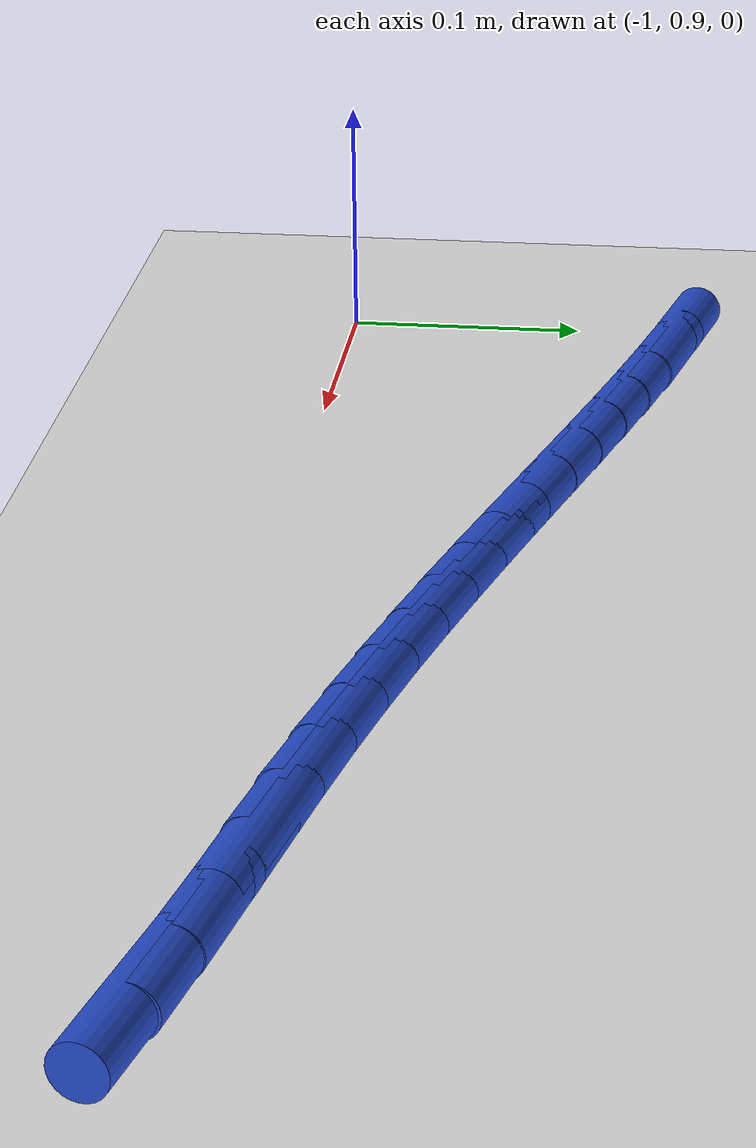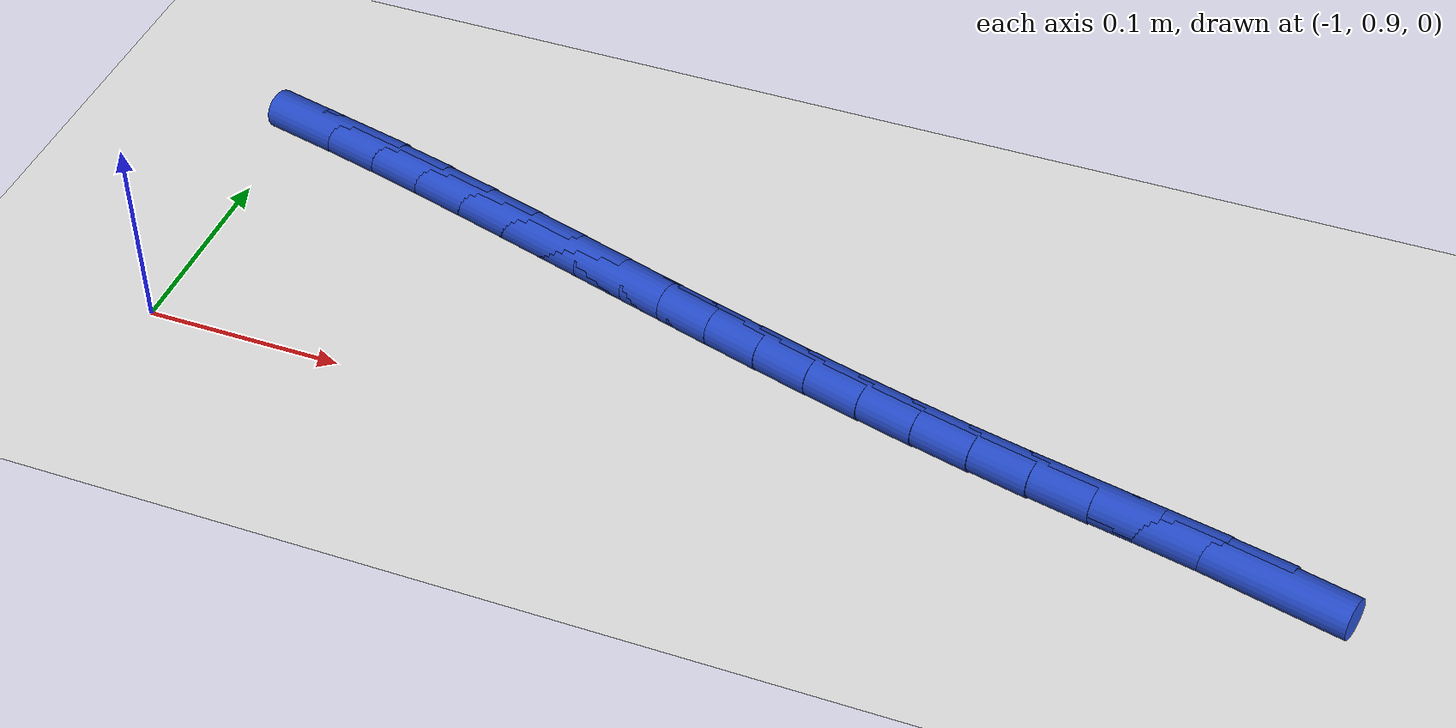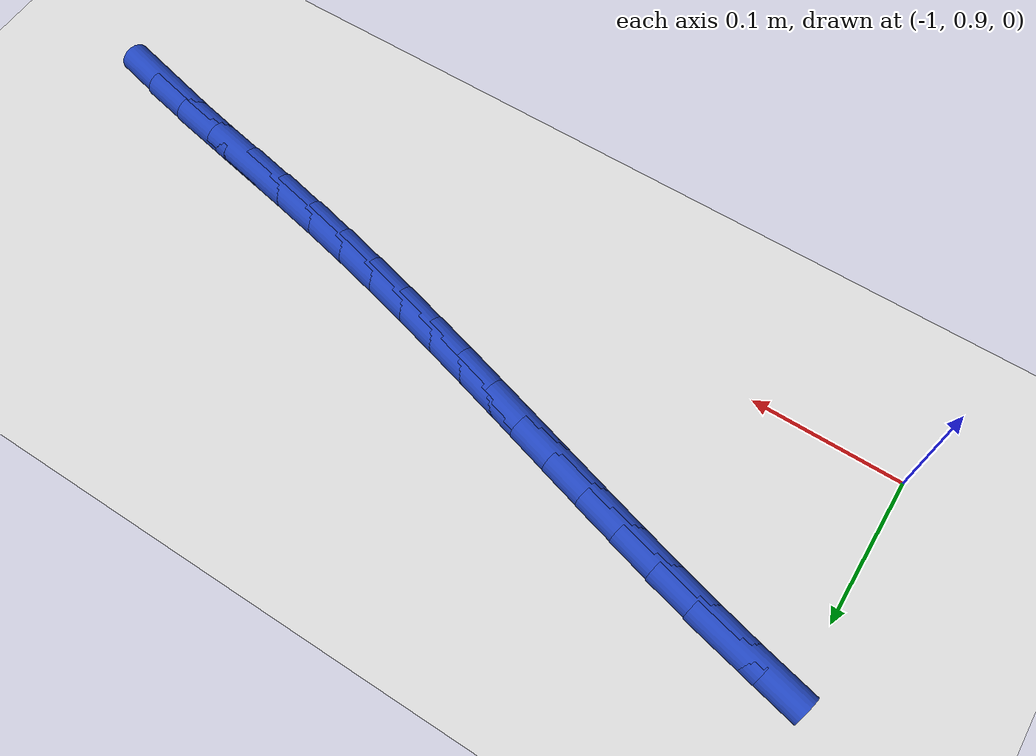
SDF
<sdf version="1.6">
 <world name="default">
  <model name="ground_plane">
   <static>1</static>
   <link name="link">
    <collision name="collision">
     <geometry><plane><normal>0 0 1</normal><size>100 100</size></plane></geometry>
     <surface><friction><ode><mu>100</mu><mu2>50</mu2></ode></friction></surface>
    </collision>
    <visual name="visual">
     <cast_shadows>0</cast_shadows>
     <geometry><plane><normal>0 0 1</normal><size>100 100</size></plane></geometry>
     <material>
      <script><uri>file://media/materials/scripts/gazebo.material</uri><name>Gazebo/WhiteGlow</name></script>
     </material>
    </visual>
   </link>
  </model>
  <model name="line">
   <link name="link_37">
    <pose>-0.4542508321903152 0.9122727972492278 0.01 0 1.57 -0.2348810649256387</pose>
    <collision name="collision">
     <geometry><cylinder><radius>0.01</radius><length>0.08</length></cylinder></geometry>
    </collision>
    <visual name="visual">
     <material>
      <script><name>Gazebo/Blue</name><uri>file://media/materials/scripts/gazebo.material</uri></script>
     </material>
     <geometry><cylinder><radius>0.01</radius><length>0.08</length></cylinder></geometry>
    </visual>
   </link>
   <link name="link_38">
    <pose>-0.4842207632817376 0.9194445404533822 0.01 0 1.57 -0.20839488779222015</pose>
    <collision name="collision">
     <geometry><cylinder><radius>0.01</radius><length>0.08</length></cylinder></geometry>
    </collision>
    <visual name="visual">
     <material>
      <script><name>Gazebo/Blue</name><uri>file://media/materials/scripts/gazebo.material</uri></script>
     </material>
     <geometry><cylinder><radius>0.01</radius><length>0.08</length></cylinder></geometry>
    </visual>
   </link>
   <link name="link_39">
    <pose>-0.5147820032058843 0.9259071725910604 0.01 0 1.57 -0.19549713225670143</pose>
    <collision name="collision">
     <geometry><cylinder><radius>0.01</radius><length>0.08</length></cylinder></geometry>
    </collision>
    <visual name="visual">
     <material>
      <script><name>Gazebo/Blue</name><uri>file://media/materials/scripts/gazebo.material</uri></script>
     </material>
     <geometry><cylinder><radius>0.01</radius><length>0.08</length></cylinder></geometry>
    </visual>
   </link>
   <link name="link_40">
    <pose>-0.545549114061751 0.9319998722472451 0.01 0 1.57 -0.19564829324302893</pose>
    <collision name="collision">
     <geometry><cylinder><radius>0.01</radius><length>0.08</length></cylinder></geometry>
    </collision>
    <visual name="visual">
     <material>
      <script><name>Gazebo/Blue</name><uri>file://media/materials/scripts/gazebo.material</uri></script>
     </material>
     <geometry><cylinder><radius>0.01</radius><length>0.08</length></cylinder></geometry>
    </visual>
   </link>
   <link name="link_41">
    <pose>-0.5761366579483342 0.9380618180069199 0.01 0 1.57 -0.20856050098652676</pose>
    <collision name="collision">
     <geometry><cylinder><radius>0.01</radius><length>0.08</length></cylinder></geometry>
    </collision>
    <visual name="visual">
     <material>
      <script><name>Gazebo/Blue</name><uri>file://media/materials/scripts/gazebo.material</uri></script>
     </material>
     <geometry><cylinder><radius>0.01</radius><length>0.08</length></cylinder></geometry>
    </visual>
   </link>
   <link name="link_42">
    <pose>-0.6061750873740807 0.9444190914313313 0.01 0 1.57 -0.22650400562591008</pose>
    <collision name="collision">
     <geometry><cylinder><radius>0.01</radius><length>0.08</length></cylinder></geometry>
    </collision>
    <visual name="visual">
     <material>
      <script><name>Gazebo/Blue</name><uri>file://media/materials/scripts/gazebo.material</uri></script>
     </material>
     <geometry><cylinder><radius>0.01</radius><length>0.08</length></cylinder></geometry>
    </visual>
   </link>
   <link name="link_43">
    <pose>-0.6355487533799522 0.9511885085421774 0.01 0 1.57 -0.24271823996712683</pose>
    <collision name="collision">
     <geometry><cylinder><radius>0.01</radius><length>0.08</length></cylinder></geometry>
    </collision>
    <visual name="visual">
     <material>
      <script><name>Gazebo/Blue</name><uri>file://media/materials/scripts/gazebo.material</uri></script>
     </material>
     <geometry><cylinder><radius>0.01</radius><length>0.08</length></cylinder></geometry>
    </visual>
   </link>
   <link name="link_44">
    <pose>-0.6643460519003547 0.9583187096561026 0.01 0 1.57 -0.25677958658338</pose>
    <collision name="collision">
     <geometry><cylinder><radius>0.01</radius><length>0.08</length></cylinder></geometry>
    </collision>
    <visual name="visual">
     <material>
      <script><name>Gazebo/Blue</name><uri>file://media/materials/scripts/gazebo.material</uri></script>
     </material>
     <geometry><cylinder><radius>0.01</radius><length>0.08</length></cylinder></geometry>
    </visual>
   </link>
   <link name="link_45">
    <pose>-0.6926611489610266 0.9657535793266353 0.01 0 1.57 -0.26848208417424424</pose>
    <collision name="collision">
     <geometry><cylinder><radius>0.01</radius><length>0.08</length></cylinder></geometry>
    </collision>
    <visual name="visual">
     <material>
      <script><name>Gazebo/Blue</name><uri>file://media/materials/scripts/gazebo.material</uri></script>
     </material>
     <geometry><cylinder><radius>0.01</radius><length>0.08</length></cylinder></geometry>
    </visual>
   </link>
   <link name="link_46">
    <pose>-0.7205882105877066 0.9734370021073038 0.01 0 1.57 -0.27765256714027803</pose>
    <collision name="collision">
     <geometry><cylinder><radius>0.01</radius><length>0.08</length></cylinder></geometry>
    </collision>
    <visual name="visual">
     <material>
      <script><name>Gazebo/Blue</name><uri>file://media/materials/scripts/gazebo.material</uri></script>
     </material>
     <geometry><cylinder><radius>0.01</radius><length>0.08</length></cylinder></geometry>
    </visual>
   </link>
   <link name="link_47">
    <pose>-0.7482214028061333 0.9813128625516364 0.01 0 1.57 -0.2841551532694134</pose>
    <collision name="collision">
     <geometry><cylinder><radius>0.01</radius><length>0.08</length></cylinder></geometry>
    </collision>
    <visual name="visual">
     <material>
      <script><name>Gazebo/Blue</name><uri>file://media/materials/scripts/gazebo.material</uri></script>
     </material>
     <geometry><cylinder><radius>0.01</radius><length>0.08</length></cylinder></geometry>
    </visual>
   </link>
   <link name="link_48">
    <pose>-0.7756548916420453 0.989325045213162 0.01 0 1.57 -0.28789459711574855</pose>
    <collision name="collision">
     <geometry><cylinder><radius>0.01</radius><length>0.08</length></cylinder></geometry>
    </collision>
    <visual name="visual">
     <material>
      <script><name>Gazebo/Blue</name><uri>file://media/materials/scripts/gazebo.material</uri></script>
     </material>
     <geometry><cylinder><radius>0.01</radius><length>0.08</length></cylinder></geometry>
    </visual>
   </link>
   <link name="link_49">
    <pose>-0.8029828431211806 0.9974174346454079 0.01 0 1.57 -0.2888185059375868</pose>
    <collision name="collision">
     <geometry><cylinder><radius>0.01</radius><length>0.08</length></cylinder></geometry>
    </collision>
    <visual name="visual">
     <material>
      <script><name>Gazebo/Blue</name><uri>file://media/materials/scripts/gazebo.material</uri></script>
     </material>
     <geometry><cylinder><radius>0.01</radius><length>0.08</length></cylinder></geometry>
    </visual>
   </link>
   <link name="link_50">
    <pose>-0.8302994232692786 1.0055339154019034 0.01 0 1.57 -0.2869184475515514</pose>
    <collision name="collision">
     <geometry><cylinder><radius>0.01</radius><length>0.08</length></cylinder></geometry>
    </collision>
    <visual name="visual">
     <material>
      <script><name>Gazebo/Blue</name><uri>file://media/materials/scripts/gazebo.material</uri></script>
     </material>
     <geometry><cylinder><radius>0.01</radius><length>0.08</length></cylinder></geometry>
    </visual>
   </link>
   <link name="link_51">
    <pose>-0.8576987981120779 1.0136183720361764 0.01 0 1.57 -0.28222971263009006</pose>
    <collision name="collision">
     <geometry><cylinder><radius>0.01</radius><length>0.08</length></cylinder></geometry>
    </collision>
    <visual name="visual">
     <material>
      <script><name>Gazebo/Blue</name><uri>file://media/materials/scripts/gazebo.material</uri></script>
     </material>
     <geometry><cylinder><radius>0.01</radius><length>0.08</length></cylinder></geometry>
    </visual>
   </link>
   <link name="link_52">
    <pose>-0.8852750954974394 1.0216146699006705 0.01 0 1.57 -0.27462542555345076</pose>
    <collision name="collision">
     <geometry><cylinder><radius>0.01</radius><length>0.08</length></cylinder></geometry>
    </collision>
    <visual name="visual">
     <material>
      <script><name>Gazebo/Blue</name><uri>file://media/materials/scripts/gazebo.material</uri></script>
     </material>
     <geometry><cylinder><radius>0.01</radius><length>0.08</length></cylinder></geometry>
    </visual>
   </link>
   <link name="link_53">
    <pose>-0.9130945313568064 1.0294526363991656 0.01 0 1.57 -0.2636023882718563</pose>
    <collision name="collision">
     <geometry><cylinder><radius>0.01</radius><length>0.08</length></cylinder></geometry>
    </collision>
    <visual name="visual">
     <material>
      <script><name>Gazebo/Blue</name><uri>file://media/materials/scripts/gazebo.material</uri></script>
     </material>
     <geometry><cylinder><radius>0.01</radius><length>0.08</length></cylinder></geometry>
    </visual>
   </link>
   <link name="link_54">
    <pose>-0.941146120559467 1.0370232716284578 0.01 0 1.57 -0.24906318397910146</pose>
    <collision name="collision">
     <geometry><cylinder><radius>0.01</radius><length>0.08</length></cylinder></geometry>
    </collision>
    <visual name="visual">
     <material>
      <script><name>Gazebo/Blue</name><uri>file://media/materials/scripts/gazebo.material</uri></script>
     </material>
     <geometry><cylinder><radius>0.01</radius><length>0.08</length></cylinder></geometry>
    </visual>
   </link>
   <link name="link_55">
    <pose>-0.9694056419272024 1.0442109187810804 0.01 0 1.57 -0.23097330110745212</pose>
    <collision name="collision">
     <geometry><cylinder><radius>0.01</radius><length>0.08</length></cylinder></geometry>
    </collision>
    <visual name="visual">
     <material>
      <script><name>Gazebo/Blue</name><uri>file://media/materials/scripts/gazebo.material</uri></script>
     </material>
     <geometry><cylinder><radius>0.01</radius><length>0.08</length></cylinder></geometry>
    </visual>
   </link>
  </model>
 </world>
</sdf>
